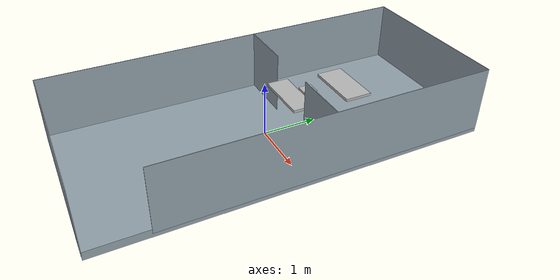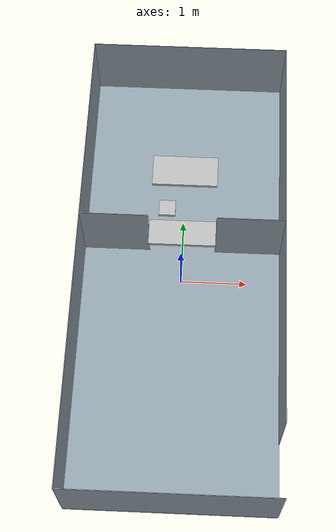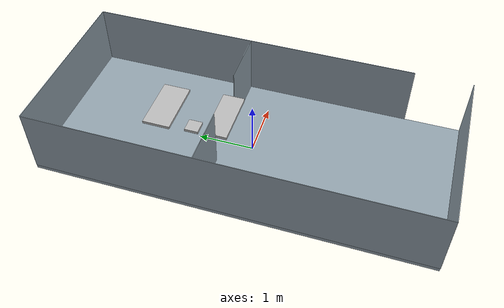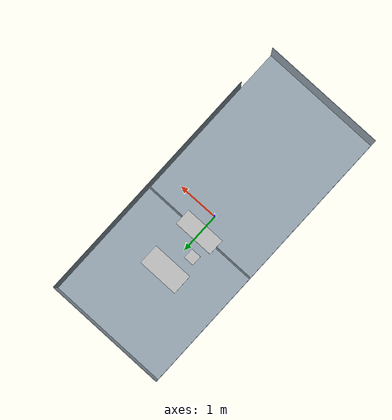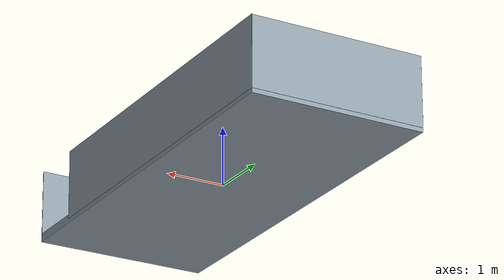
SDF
<?xml version="1.0"?>
<sdf version='1.6'>
<model name="environment_floor_2">

  <material name="white">
    <color rgba="0.9 0.9 0.9 1.0"/>
  </material>

  <link name="center">
    <pose>5.025 0 -1.2 0 0 0 </pose>
  </link>

  <joint name='floor_joint' type='fixed'>
    <parent>center</parent>
    <child>floor</child>
  </joint>

  <link name="floor">
    <pose>0 0 0 0 0 0 </pose>
    <inertial>
      <mass>1</mass>
        <inertia>
          <ixx>1</ixx>
          <ixy>0</ixy>
          <ixz>0</ixz>
          <iyy>1</iyy>
          <iyz>0</iyz>
          <izz>1</izz>
        </inertia>
    </inertial>

    <visual name='tabletop'>
      <pose>0 0 0 0 0 0</pose>
      <geometry>
        <box>
          <size>3 7 0.15</size>
        </box>
      </geometry>
      <material>
        <diffuse>0.57 0.63 0.67 1.0</diffuse>
      </material>
    </visual>

    <visual name='wall_1'>
      <pose>0 -3.5 0.6 0 0 0</pose>
      <geometry>
        <box>
          <size>3 0.01 1.2</size>
        </box>
      </geometry>
      <material>
        <diffuse>0.57 0.63 0.67 1.0</diffuse>
      </material>
    </visual>

    <visual name='wall_2'>
      <pose>0 3.5 0.6 0 0 0</pose>
      <geometry>
        <box>
          <size>3 0.01 1.2</size>
        </box>
      </geometry>
      <material>
        <diffuse>0.57 0.63 0.67 1.0</diffuse>
      </material>
    </visual>

    <visual name='wall_3'>
      <pose>1.5 0.5 0.6 0 0 1.57079632679</pose>
      <geometry>
        <box>
          <size>6 0.01 1.2</size>
        </box>
      </geometry>
      <material>
        <diffuse>0.57 0.63 0.67 1.0</diffuse>
      </material>
    </visual>

    <visual name='wall_4'>
      <pose>-1.5 0 0.6 0 0 1.57079632679</pose>
      <geometry>
        <box>
          <size>7 0.01 1.2</size>
        </box>
      </geometry>
      <material>
        <diffuse>0.57 0.63 0.67 1.0</diffuse>
      </material>
    </visual>

    <visual name='kuka_wall_left'>
      <pose>1 0.5 0.6 0 0 0</pose>
      <geometry>
        <box>
          <size>1 0.01 1.2</size>
        </box>
      </geometry>
      <material>
        <diffuse>0.57 0.63 0.67 1.0</diffuse>
      </material>
    </visual>

    <visual name='kuka_wall_right'>
      <pose>-1 0.5 0.6 0 0 0</pose>
      <geometry>
        <box>
          <size>1 0.01 1.2</size>
        </box>
      </geometry>
      <material>
        <diffuse>0.57 0.63 0.67 1.0</diffuse>
      </material>
    </visual>

    <visual name='kuka_table'>
      <pose>0 0.5 0.665 0 0 0</pose>
      <geometry>
        <box>
          <size>1 0.4 0.05</size>
        </box>
      </geometry>
      <material name="white"/>
    </visual>

    <visual name='box_table'>
      <pose>0 1.6 0.6 0 0 0</pose>
      <geometry>
        <box>
          <size>1 0.5 0.05</size>
        </box>
      </geometry>
      <material name="white"/>
    </visual>

    <visual name='kuka_platform'>
      <pose>-0.25 1 0.5 0 0 0</pose>
      <geometry>
        <box>
          <size>0.25 0.25 0.05</size>
        </box>
      </geometry>
      <material name="white"/>
    </visual>

   </link>
</model>
</sdf>
